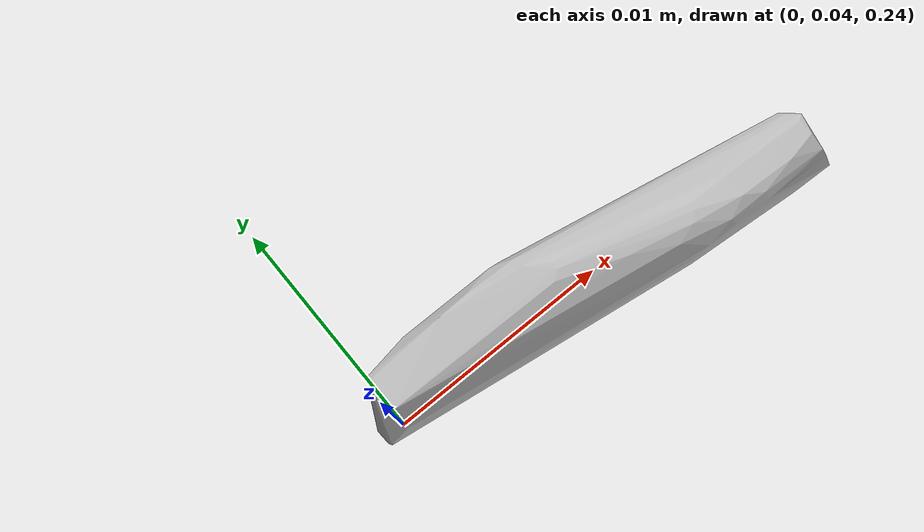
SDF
<?xml version="1.0"?>
<sdf version="1.7">
  <model name="vascular_partexport041">
    <link name="vascular_partexport041_body">
      <visual name="vascular_partexport041_visual">
        <geometry>
          <mesh>
            <uri>vascular_partexport041.obj</uri>
          </mesh>
        </geometry>
      </visual>
      <collision name="vascular_partexport041_collision">
        <geometry>
          <mesh>
            <uri>vascular_partexport041.obj</uri>
          </mesh>
        </geometry>
      </collision>
    </link>
    <frame name="vascular_partexport041_center">
      <pose relative_to="vascular_partexport041_body">0 0 0 0 0 0</pose>
    </frame>
  </model>
</sdf>
